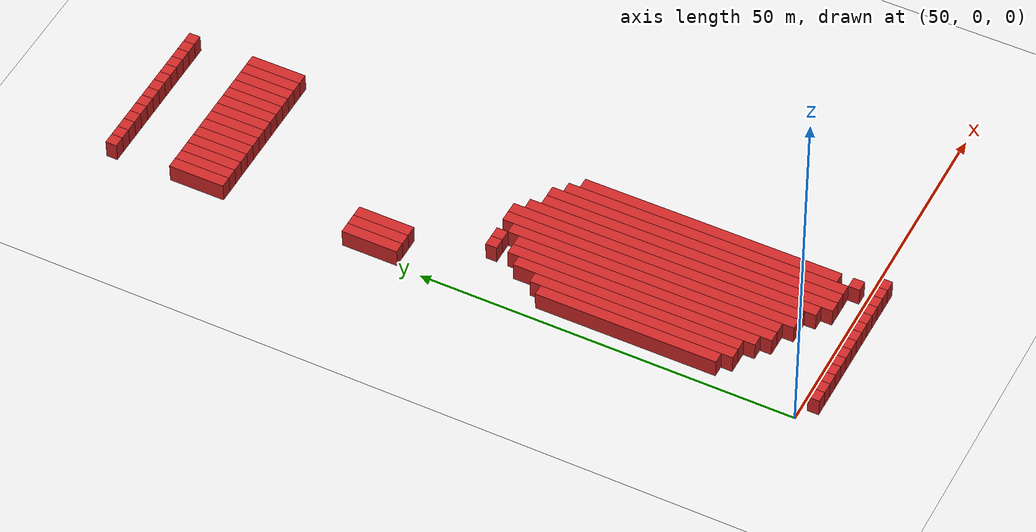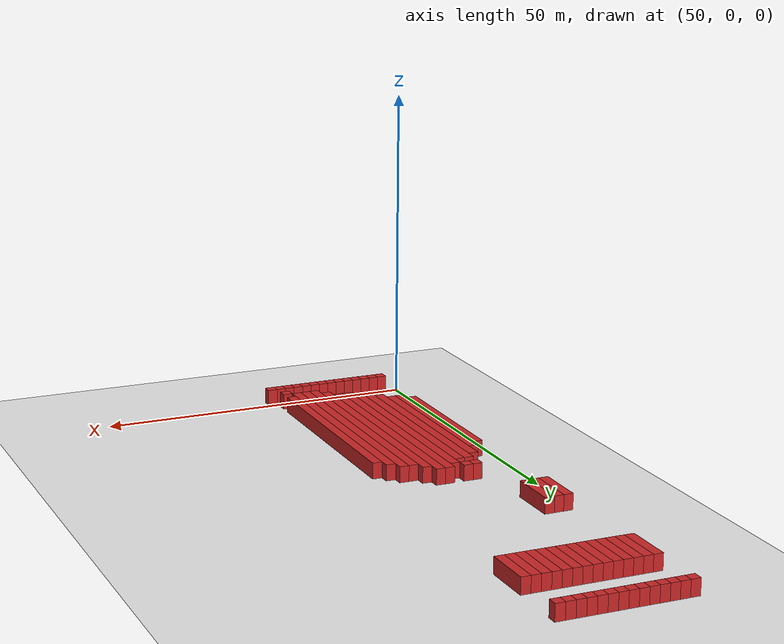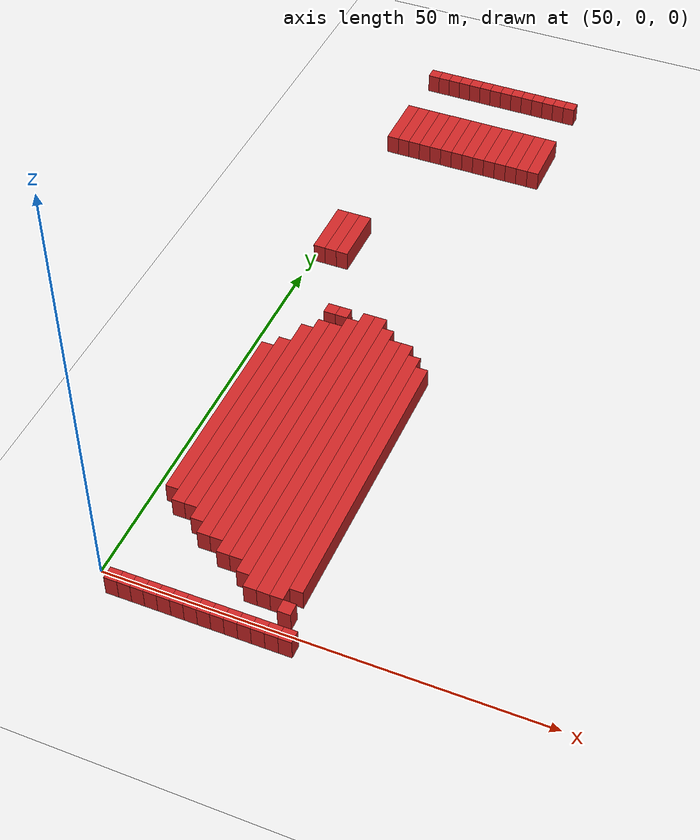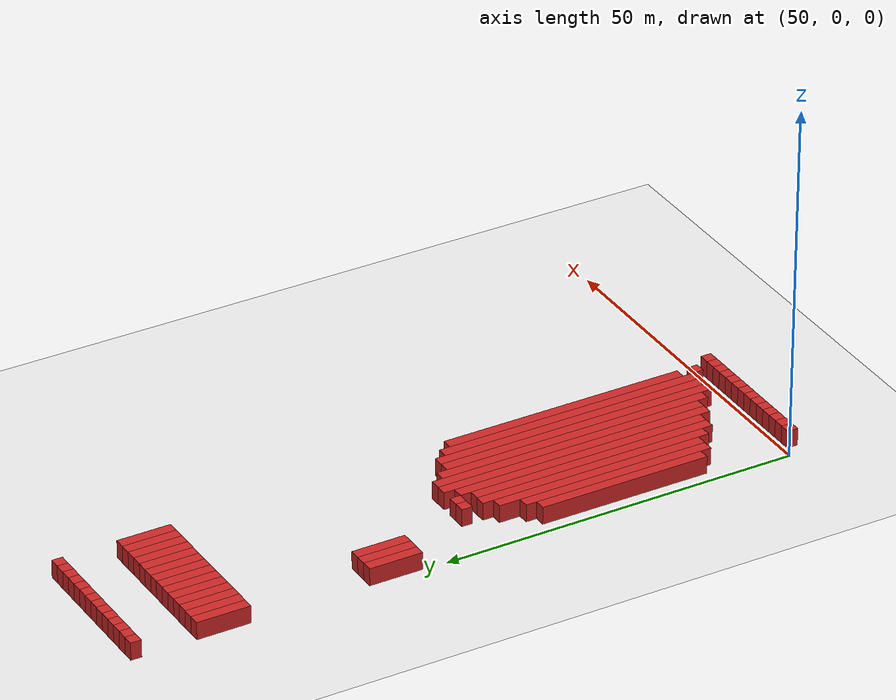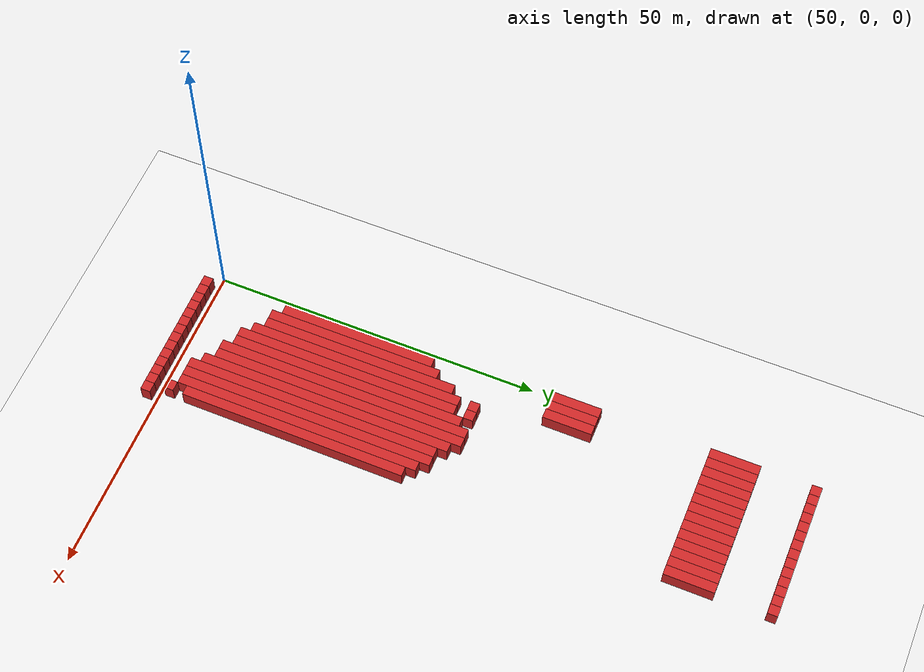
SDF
<sdf version="1.4">
 <world name="1_wall">
  <model name="ground_plane">
   <static>1</static>
   <link name="link">
    <collision name="collision">
     <geometry><plane><normal>0 0 1</normal><size>1000 1000</size></plane></geometry>
     <surface><friction><ode><mu>100</mu><mu2>50</mu2></ode></friction></surface>
    </collision>
    <visual name="visual">
     <cast_shadows>0</cast_shadows>
     <geometry><plane><normal>0 0 1</normal><size>10000 10000</size></plane></geometry>
     <material>
      <script><uri>file://media/materials/scripts/gazebo.material</uri><name>Gazebo/White</name></script>
     </material>
    </visual>
    <velocity_decay><linear>0</linear><angular>0</angular></velocity_decay>
   </link>
  </model>
  <model name="Wall_122">
   <static>1</static>
   <link name="Wall_122">
    <collision name="Wall_Collision_122">
     <geometry><box><size>7.5 1.5 2.5</size></box></geometry>
     <pose>0 0 1.25 0 -0 0</pose>
    </collision>
    <visual name="Wall_Visual_122">
     <pose>0 0 1.25 0 -0 0</pose>
     <geometry><box><size>7.5 1.5 2.5</size></box></geometry>
     <material>
      <script><uri>file://media/materials/scripts/gazebo.material</uri><name>Gazebo/Red</name></script>
     </material>
    </visual>
    <velocity_decay><linear>0</linear><angular>0</angular></velocity_decay>
    <pose>51.0 57.0 0 0 0 1.5707963267948966</pose>
   </link>
  </model>
  <model name="Wall_123">
   <static>1</static>
   <link name="Wall_123">
    <collision name="Wall_Collision_123">
     <geometry><box><size>7.5 1.5 2.5</size></box></geometry>
     <pose>0 0 1.25 0 -0 0</pose>
    </collision>
    <visual name="Wall_Visual_123">
     <pose>0 0 1.25 0 -0 0</pose>
     <geometry><box><size>7.5 1.5 2.5</size></box></geometry>
     <material>
      <script><uri>file://media/materials/scripts/gazebo.material</uri><name>Gazebo/Red</name></script>
     </material>
    </visual>
    <velocity_decay><linear>0</linear><angular>0</angular></velocity_decay>
    <pose>51.0 81.0 0 0 0 1.5707963267948966</pose>
   </link>
  </model>
  <model name="Wall_124">
   <static>1</static>
   <link name="Wall_124">
    <collision name="Wall_Collision_124">
     <geometry><box><size>1.5 1.5 2.5</size></box></geometry>
     <pose>0 0 1.25 0 -0 0</pose>
    </collision>
    <visual name="Wall_Visual_124">
     <pose>0 0 1.25 0 -0 0</pose>
     <geometry><box><size>1.5 1.5 2.5</size></box></geometry>
     <material>
      <script><uri>file://media/materials/scripts/gazebo.material</uri><name>Gazebo/Red</name></script>
     </material>
    </visual>
    <velocity_decay><linear>0</linear><angular>0</angular></velocity_decay>
    <pose>51.0 93.0 0 0 0 1.5707963267948966</pose>
   </link>
  </model>
  <model name="Wall_125">
   <static>1</static>
   <link name="Wall_125">
    <collision name="Wall_Collision_125">
     <geometry><box><size>1.5 1.5 2.5</size></box></geometry>
     <pose>0 0 1.25 0 -0 0</pose>
    </collision>
    <visual name="Wall_Visual_125">
     <pose>0 0 1.25 0 -0 0</pose>
     <geometry><box><size>1.5 1.5 2.5</size></box></geometry>
     <material>
      <script><uri>file://media/materials/scripts/gazebo.material</uri><name>Gazebo/Red</name></script>
     </material>
    </visual>
    <velocity_decay><linear>0</linear><angular>0</angular></velocity_decay>
    <pose>52.5 -1.5 0 0 0 1.5707963267948966</pose>
   </link>
  </model>
  <model name="Wall_126">
   <static>1</static>
   <link name="Wall_126">
    <collision name="Wall_Collision_126">
     <geometry><box><size>24.0 1.5 2.5</size></box></geometry>
     <pose>0 0 1.25 0 -0 0</pose>
    </collision>
    <visual name="Wall_Visual_126">
     <pose>0 0 1.25 0 -0 0</pose>
     <geometry><box><size>24.0 1.5 2.5</size></box></geometry>
     <material>
      <script><uri>file://media/materials/scripts/gazebo.material</uri><name>Gazebo/Red</name></script>
     </material>
    </visual>
    <velocity_decay><linear>0</linear><angular>0</angular></velocity_decay>
    <pose>52.5 23.25 0 0 0 1.5707963267948966</pose>
   </link>
  </model>
  <model name="Wall_127">
   <static>1</static>
   <link name="Wall_127">
    <collision name="Wall_Collision_127">
     <geometry><box><size>7.5 1.5 2.5</size></box></geometry>
     <pose>0 0 1.25 0 -0 0</pose>
    </collision>
    <visual name="Wall_Visual_127">
     <pose>0 0 1.25 0 -0 0</pose>
     <geometry><box><size>7.5 1.5 2.5</size></box></geometry>
     <material>
      <script><uri>file://media/materials/scripts/gazebo.material</uri><name>Gazebo/Red</name></script>
     </material>
    </visual>
    <velocity_decay><linear>0</linear><angular>0</angular></velocity_decay>
    <pose>52.5 57.0 0 0 0 1.5707963267948966</pose>
   </link>
  </model>
  <model name="Wall_128">
   <static>1</static>
   <link name="Wall_128">
    <collision name="Wall_Collision_128">
     <geometry><box><size>7.5 1.5 2.5</size></box></geometry>
     <pose>0 0 1.25 0 -0 0</pose>
    </collision>
    <visual name="Wall_Visual_128">
     <pose>0 0 1.25 0 -0 0</pose>
     <geometry><box><size>7.5 1.5 2.5</size></box></geometry>
     <material>
      <script><uri>file://media/materials/scripts/gazebo.material</uri><name>Gazebo/Red</name></script>
     </material>
    </visual>
    <velocity_decay><linear>0</linear><angular>0</angular></velocity_decay>
    <pose>52.5 81.0 0 0 0 1.5707963267948966</pose>
   </link>
  </model>
  <model name="Wall_129">
   <static>1</static>
   <link name="Wall_129">
    <collision name="Wall_Collision_129">
     <geometry><box><size>1.5 1.5 2.5</size></box></geometry>
     <pose>0 0 1.25 0 -0 0</pose>
    </collision>
    <visual name="Wall_Visual_129">
     <pose>0 0 1.25 0 -0 0</pose>
     <geometry><box><size>1.5 1.5 2.5</size></box></geometry>
     <material>
      <script><uri>file://media/materials/scripts/gazebo.material</uri><name>Gazebo/Red</name></script>
     </material>
    </visual>
    <velocity_decay><linear>0</linear><angular>0</angular></velocity_decay>
    <pose>52.5 93.0 0 0 0 1.5707963267948966</pose>
   </link>
  </model>
  <model name="Wall_130">
   <static>1</static>
   <link name="Wall_130">
    <collision name="Wall_Collision_130">
     <geometry><box><size>1.5 1.5 2.5</size></box></geometry>
     <pose>0 0 1.25 0 -0 0</pose>
    </collision>
    <visual name="Wall_Visual_130">
     <pose>0 0 1.25 0 -0 0</pose>
     <geometry><box><size>1.5 1.5 2.5</size></box></geometry>
     <material>
      <script><uri>file://media/materials/scripts/gazebo.material</uri><name>Gazebo/Red</name></script>
     </material>
    </visual>
    <velocity_decay><linear>0</linear><angular>0</angular></velocity_decay>
    <pose>54.0 -1.5 0 0 0 1.5707963267948966</pose>
   </link>
  </model>
  <model name="Wall_131">
   <static>1</static>
   <link name="Wall_131">
    <collision name="Wall_Collision_131">
     <geometry><box><size>27.0 1.5 2.5</size></box></geometry>
     <pose>0 0 1.25 0 -0 0</pose>
    </collision>
    <visual name="Wall_Visual_131">
     <pose>0 0 1.25 0 -0 0</pose>
     <geometry><box><size>27.0 1.5 2.5</size></box></geometry>
     <material>
      <script><uri>file://media/materials/scripts/gazebo.material</uri><name>Gazebo/Red</name></script>
     </material>
    </visual>
    <velocity_decay><linear>0</linear><angular>0</angular></velocity_decay>
    <pose>54.0 23.25 0 0 0 1.5707963267948966</pose>
   </link>
  </model>
  <model name="Wall_132">
   <static>1</static>
   <link name="Wall_132">
    <collision name="Wall_Collision_132">
     <geometry><box><size>7.5 1.5 2.5</size></box></geometry>
     <pose>0 0 1.25 0 -0 0</pose>
    </collision>
    <visual name="Wall_Visual_132">
     <pose>0 0 1.25 0 -0 0</pose>
     <geometry><box><size>7.5 1.5 2.5</size></box></geometry>
     <material>
      <script><uri>file://media/materials/scripts/gazebo.material</uri><name>Gazebo/Red</name></script>
     </material>
    </visual>
    <velocity_decay><linear>0</linear><angular>0</angular></velocity_decay>
    <pose>54.0 57.0 0 0 0 1.5707963267948966</pose>
   </link>
  </model>
  <model name="Wall_133">
   <static>1</static>
   <link name="Wall_133">
    <collision name="Wall_Collision_133">
     <geometry><box><size>7.5 1.5 2.5</size></box></geometry>
     <pose>0 0 1.25 0 -0 0</pose>
    </collision>
    <visual name="Wall_Visual_133">
     <pose>0 0 1.25 0 -0 0</pose>
     <geometry><box><size>7.5 1.5 2.5</size></box></geometry>
     <material>
      <script><uri>file://media/materials/scripts/gazebo.material</uri><name>Gazebo/Red</name></script>
     </material>
    </visual>
    <velocity_decay><linear>0</linear><angular>0</angular></velocity_decay>
    <pose>54.0 81.0 0 0 0 1.5707963267948966</pose>
   </link>
  </model>
  <model name="Wall_134">
   <static>1</static>
   <link name="Wall_134">
    <collision name="Wall_Collision_134">
     <geometry><box><size>1.5 1.5 2.5</size></box></geometry>
     <pose>0 0 1.25 0 -0 0</pose>
    </collision>
    <visual name="Wall_Visual_134">
     <pose>0 0 1.25 0 -0 0</pose>
     <geometry><box><size>1.5 1.5 2.5</size></box></geometry>
     <material>
      <script><uri>file://media/materials/scripts/gazebo.material</uri><name>Gazebo/Red</name></script>
     </material>
    </visual>
    <velocity_decay><linear>0</linear><angular>0</angular></velocity_decay>
    <pose>54.0 93.0 0 0 0 1.5707963267948966</pose>
   </link>
  </model>
  <model name="Wall_135">
   <static>1</static>
   <link name="Wall_135">
    <collision name="Wall_Collision_135">
     <geometry><box><size>1.5 1.5 2.5</size></box></geometry>
     <pose>0 0 1.25 0 -0 0</pose>
    </collision>
    <visual name="Wall_Visual_135">
     <pose>0 0 1.25 0 -0 0</pose>
     <geometry><box><size>1.5 1.5 2.5</size></box></geometry>
     <material>
      <script><uri>file://media/materials/scripts/gazebo.material</uri><name>Gazebo/Red</name></script>
     </material>
    </visual>
    <velocity_decay><linear>0</linear><angular>0</angular></velocity_decay>
    <pose>55.5 -1.5 0 0 0 1.5707963267948966</pose>
   </link>
  </model>
  <model name="Wall_136">
   <static>1</static>
   <link name="Wall_136">
    <collision name="Wall_Collision_136">
     <geometry><box><size>30.0 1.5 2.5</size></box></geometry>
     <pose>0 0 1.25 0 -0 0</pose>
    </collision>
    <visual name="Wall_Visual_136">
     <pose>0 0 1.25 0 -0 0</pose>
     <geometry><box><size>30.0 1.5 2.5</size></box></geometry>
     <material>
      <script><uri>file://media/materials/scripts/gazebo.material</uri><name>Gazebo/Red</name></script>
     </material>
    </visual>
    <velocity_decay><linear>0</linear><angular>0</angular></velocity_decay>
    <pose>55.5 24.75 0 0 0 1.5707963267948966</pose>
   </link>
  </model>
  <model name="Wall_137">
   <static>1</static>
   <link name="Wall_137">
    <collision name="Wall_Collision_137">
     <geometry><box><size>7.5 1.5 2.5</size></box></geometry>
     <pose>0 0 1.25 0 -0 0</pose>
    </collision>
    <visual name="Wall_Visual_137">
     <pose>0 0 1.25 0 -0 0</pose>
     <geometry><box><size>7.5 1.5 2.5</size></box></geometry>
     <material>
      <script><uri>file://media/materials/scripts/gazebo.material</uri><name>Gazebo/Red</name></script>
     </material>
    </visual>
    <velocity_decay><linear>0</linear><angular>0</angular></velocity_decay>
    <pose>55.5 81.0 0 0 0 1.5707963267948966</pose>
   </link>
  </model>
  <model name="Wall_138">
   <static>1</static>
   <link name="Wall_138">
    <collision name="Wall_Collision_138">
     <geometry><box><size>1.5 1.5 2.5</size></box></geometry>
     <pose>0 0 1.25 0 -0 0</pose>
    </collision>
    <visual name="Wall_Visual_138">
     <pose>0 0 1.25 0 -0 0</pose>
     <geometry><box><size>1.5 1.5 2.5</size></box></geometry>
     <material>
      <script><uri>file://media/materials/scripts/gazebo.material</uri><name>Gazebo/Red</name></script>
     </material>
    </visual>
    <velocity_decay><linear>0</linear><angular>0</angular></velocity_decay>
    <pose>55.5 93.0 0 0 0 1.5707963267948966</pose>
   </link>
  </model>
  <model name="Wall_139">
   <static>1</static>
   <link name="Wall_139">
    <collision name="Wall_Collision_139">
     <geometry><box><size>1.5 1.5 2.5</size></box></geometry>
     <pose>0 0 1.25 0 -0 0</pose>
    </collision>
    <visual name="Wall_Visual_139">
     <pose>0 0 1.25 0 -0 0</pose>
     <geometry><box><size>1.5 1.5 2.5</size></box></geometry>
     <material>
      <script><uri>file://media/materials/scripts/gazebo.material</uri><name>Gazebo/Red</name></script>
     </material>
    </visual>
    <velocity_decay><linear>0</linear><angular>0</angular></velocity_decay>
    <pose>57.0 -1.5 0 0 0 1.5707963267948966</pose>
   </link>
  </model>
  <model name="Wall_140">
   <static>1</static>
   <link name="Wall_140">
    <collision name="Wall_Collision_140">
     <geometry><box><size>33.0 1.5 2.5</size></box></geometry>
     <pose>0 0 1.25 0 -0 0</pose>
    </collision>
    <visual name="Wall_Visual_140">
     <pose>0 0 1.25 0 -0 0</pose>
     <geometry><box><size>33.0 1.5 2.5</size></box></geometry>
     <material>
      <script><uri>file://media/materials/scripts/gazebo.material</uri><name>Gazebo/Red</name></script>
     </material>
    </visual>
    <velocity_decay><linear>0</linear><angular>0</angular></velocity_decay>
    <pose>57.0 24.75 0 0 0 1.5707963267948966</pose>
   </link>
  </model>
  <model name="Wall_141">
   <static>1</static>
   <link name="Wall_141">
    <collision name="Wall_Collision_141">
     <geometry><box><size>1.5 1.5 2.5</size></box></geometry>
     <pose>0 0 1.25 0 -0 0</pose>
    </collision>
    <visual name="Wall_Visual_141">
     <pose>0 0 1.25 0 -0 0</pose>
     <geometry><box><size>1.5 1.5 2.5</size></box></geometry>
     <material>
      <script><uri>file://media/materials/scripts/gazebo.material</uri><name>Gazebo/Red</name></script>
     </material>
    </visual>
    <velocity_decay><linear>0</linear><angular>0</angular></velocity_decay>
    <pose>57.0 43.5 0 0 0 1.5707963267948966</pose>
   </link>
  </model>
  <model name="Wall_142">
   <static>1</static>
   <link name="Wall_142">
    <collision name="Wall_Collision_142">
     <geometry><box><size>7.5 1.5 2.5</size></box></geometry>
     <pose>0 0 1.25 0 -0 0</pose>
    </collision>
    <visual name="Wall_Visual_142">
     <pose>0 0 1.25 0 -0 0</pose>
     <geometry><box><size>7.5 1.5 2.5</size></box></geometry>
     <material>
      <script><uri>file://media/materials/scripts/gazebo.material</uri><name>Gazebo/Red</name></script>
     </material>
    </visual>
    <velocity_decay><linear>0</linear><angular>0</angular></velocity_decay>
    <pose>57.0 81.0 0 0 0 1.5707963267948966</pose>
   </link>
  </model>
  <model name="Wall_143">
   <static>1</static>
   <link name="Wall_143">
    <collision name="Wall_Collision_143">
     <geometry><box><size>1.5 1.5 2.5</size></box></geometry>
     <pose>0 0 1.25 0 -0 0</pose>
    </collision>
    <visual name="Wall_Visual_143">
     <pose>0 0 1.25 0 -0 0</pose>
     <geometry><box><size>1.5 1.5 2.5</size></box></geometry>
     <material>
      <script><uri>file://media/materials/scripts/gazebo.material</uri><name>Gazebo/Red</name></script>
     </material>
    </visual>
    <velocity_decay><linear>0</linear><angular>0</angular></velocity_decay>
    <pose>57.0 93.0 0 0 0 1.5707963267948966</pose>
   </link>
  </model>
  <model name="Wall_144">
   <static>1</static>
   <link name="Wall_144">
    <collision name="Wall_Collision_144">
     <geometry><box><size>1.5 1.5 2.5</size></box></geometry>
     <pose>0 0 1.25 0 -0 0</pose>
    </collision>
    <visual name="Wall_Visual_144">
     <pose>0 0 1.25 0 -0 0</pose>
     <geometry><box><size>1.5 1.5 2.5</size></box></geometry>
     <material>
      <script><uri>file://media/materials/scripts/gazebo.material</uri><name>Gazebo/Red</name></script>
     </material>
    </visual>
    <velocity_decay><linear>0</linear><angular>0</angular></velocity_decay>
    <pose>58.5 -1.5 0 0 0 1.5707963267948966</pose>
   </link>
  </model>
  <model name="Wall_145">
   <static>1</static>
   <link name="Wall_145">
    <collision name="Wall_Collision_145">
     <geometry><box><size>34.5 1.5 2.5</size></box></geometry>
     <pose>0 0 1.25 0 -0 0</pose>
    </collision>
    <visual name="Wall_Visual_145">
     <pose>0 0 1.25 0 -0 0</pose>
     <geometry><box><size>34.5 1.5 2.5</size></box></geometry>
     <material>
      <script><uri>file://media/materials/scripts/gazebo.material</uri><name>Gazebo/Red</name></script>
     </material>
    </visual>
    <velocity_decay><linear>0</linear><angular>0</angular></velocity_decay>
    <pose>58.5 24.0 0 0 0 1.5707963267948966</pose>
   </link>
  </model>
  <model name="Wall_146">
   <static>1</static>
   <link name="Wall_146">
    <collision name="Wall_Collision_146">
     <geometry><box><size>1.5 1.5 2.5</size></box></geometry>
     <pose>0 0 1.25 0 -0 0</pose>
    </collision>
    <visual name="Wall_Visual_146">
     <pose>0 0 1.25 0 -0 0</pose>
     <geometry><box><size>1.5 1.5 2.5</size></box></geometry>
     <material>
      <script><uri>file://media/materials/scripts/gazebo.material</uri><name>Gazebo/Red</name></script>
     </material>
    </visual>
    <velocity_decay><linear>0</linear><angular>0</angular></velocity_decay>
    <pose>58.5 43.5 0 0 0 1.5707963267948966</pose>
   </link>
  </model>
  <model name="Wall_147">
   <static>1</static>
   <link name="Wall_147">
    <collision name="Wall_Collision_147">
     <geometry><box><size>7.5 1.5 2.5</size></box></geometry>
     <pose>0 0 1.25 0 -0 0</pose>
    </collision>
    <visual name="Wall_Visual_147">
     <pose>0 0 1.25 0 -0 0</pose>
     <geometry><box><size>7.5 1.5 2.5</size></box></geometry>
     <material>
      <script><uri>file://media/materials/scripts/gazebo.material</uri><name>Gazebo/Red</name></script>
     </material>
    </visual>
    <velocity_decay><linear>0</linear><angular>0</angular></velocity_decay>
    <pose>58.5 81.0 0 0 0 1.5707963267948966</pose>
   </link>
  </model>
  <model name="Wall_148">
   <static>1</static>
   <link name="Wall_148">
    <collision name="Wall_Collision_148">
     <geometry><box><size>1.5 1.5 2.5</size></box></geometry>
     <pose>0 0 1.25 0 -0 0</pose>
    </collision>
    <visual name="Wall_Visual_148">
     <pose>0 0 1.25 0 -0 0</pose>
     <geometry><box><size>1.5 1.5 2.5</size></box></geometry>
     <material>
      <script><uri>file://media/materials/scripts/gazebo.material</uri><name>Gazebo/Red</name></script>
     </material>
    </visual>
    <velocity_decay><linear>0</linear><angular>0</angular></velocity_decay>
    <pose>58.5 93.0 0 0 0 1.5707963267948966</pose>
   </link>
  </model>
  <model name="Wall_149">
   <static>1</static>
   <link name="Wall_149">
    <collision name="Wall_Collision_149">
     <geometry><box><size>1.5 1.5 2.5</size></box></geometry>
     <pose>0 0 1.25 0 -0 0</pose>
    </collision>
    <visual name="Wall_Visual_149">
     <pose>0 0 1.25 0 -0 0</pose>
     <geometry><box><size>1.5 1.5 2.5</size></box></geometry>
     <material>
      <script><uri>file://media/materials/scripts/gazebo.material</uri><name>Gazebo/Red</name></script>
     </material>
    </visual>
    <velocity_decay><linear>0</linear><angular>0</angular></velocity_decay>
    <pose>60.0 -1.5 0 0 0 1.5707963267948966</pose>
   </link>
  </model>
  <model name="Wall_150">
   <static>1</static>
   <link name="Wall_150">
    <collision name="Wall_Collision_150">
     <geometry><box><size>36.0 1.5 2.5</size></box></geometry>
     <pose>0 0 1.25 0 -0 0</pose>
    </collision>
    <visual name="Wall_Visual_150">
     <pose>0 0 1.25 0 -0 0</pose>
     <geometry><box><size>36.0 1.5 2.5</size></box></geometry>
     <material>
      <script><uri>file://media/materials/scripts/gazebo.material</uri><name>Gazebo/Red</name></script>
     </material>
    </visual>
    <velocity_decay><linear>0</linear><angular>0</angular></velocity_decay>
    <pose>60.0 24.75 0 0 0 1.5707963267948966</pose>
   </link>
  </model>
  <model name="Wall_151">
   <static>1</static>
   <link name="Wall_151">
    <collision name="Wall_Collision_151">
     <geometry><box><size>7.5 1.5 2.5</size></box></geometry>
     <pose>0 0 1.25 0 -0 0</pose>
    </collision>
    <visual name="Wall_Visual_151">
     <pose>0 0 1.25 0 -0 0</pose>
     <geometry><box><size>7.5 1.5 2.5</size></box></geometry>
     <material>
      <script><uri>file://media/materials/scripts/gazebo.material</uri><name>Gazebo/Red</name></script>
     </material>
    </visual>
    <velocity_decay><linear>0</linear><angular>0</angular></velocity_decay>
    <pose>60.0 81.0 0 0 0 1.5707963267948966</pose>
   </link>
  </model>
  <model name="Wall_152">
   <static>1</static>
   <link name="Wall_152">
    <collision name="Wall_Collision_152">
     <geometry><box><size>1.5 1.5 2.5</size></box></geometry>
     <pose>0 0 1.25 0 -0 0</pose>
    </collision>
    <visual name="Wall_Visual_152">
     <pose>0 0 1.25 0 -0 0</pose>
     <geometry><box><size>1.5 1.5 2.5</size></box></geometry>
     <material>
      <script><uri>file://media/materials/scripts/gazebo.material</uri><name>Gazebo/Red</name></script>
     </material>
    </visual>
    <velocity_decay><linear>0</linear><angular>0</angular></velocity_decay>
    <pose>60.0 93.0 0 0 0 1.5707963267948966</pose>
   </link>
  </model>
  <model name="Wall_153">
   <static>1</static>
   <link name="Wall_153">
    <collision name="Wall_Collision_153">
     <geometry><box><size>1.5 1.5 2.5</size></box></geometry>
     <pose>0 0 1.25 0 -0 0</pose>
    </collision>
    <visual name="Wall_Visual_153">
     <pose>0 0 1.25 0 -0 0</pose>
     <geometry><box><size>1.5 1.5 2.5</size></box></geometry>
     <material>
      <script><uri>file://media/materials/scripts/gazebo.material</uri><name>Gazebo/Red</name></script>
     </material>
    </visual>
    <velocity_decay><linear>0</linear><angular>0</angular></velocity_decay>
    <pose>61.5 -1.5 0 0 0 1.5707963267948966</pose>
   </link>
  </model>
  <model name="Wall_154">
   <static>1</static>
   <link name="Wall_154">
    <collision name="Wall_Collision_154">
     <geometry><box><size>39.0 1.5 2.5</size></box></geometry>
     <pose>0 0 1.25 0 -0 0</pose>
    </collision>
    <visual name="Wall_Visual_154">
     <pose>0 0 1.25 0 -0 0</pose>
     <geometry><box><size>39.0 1.5 2.5</size></box></geometry>
     <material>
      <script><uri>file://media/materials/scripts/gazebo.material</uri><name>Gazebo/Red</name></script>
     </material>
    </visual>
    <velocity_decay><linear>0</linear><angular>0</angular></velocity_decay>
    <pose>61.5 24.75 0 0 0 1.5707963267948966</pose>
   </link>
  </model>
  <model name="Wall_155">
   <static>1</static>
   <link name="Wall_155">
    <collision name="Wall_Collision_155">
     <geometry><box><size>7.5 1.5 2.5</size></box></geometry>
     <pose>0 0 1.25 0 -0 0</pose>
    </collision>
    <visual name="Wall_Visual_155">
     <pose>0 0 1.25 0 -0 0</pose>
     <geometry><box><size>7.5 1.5 2.5</size></box></geometry>
     <material>
      <script><uri>file://media/materials/scripts/gazebo.material</uri><name>Gazebo/Red</name></script>
     </material>
    </visual>
    <velocity_decay><linear>0</linear><angular>0</angular></velocity_decay>
    <pose>61.5 81.0 0 0 0 1.5707963267948966</pose>
   </link>
  </model>
  <model name="Wall_156">
   <static>1</static>
   <link name="Wall_156">
    <collision name="Wall_Collision_156">
     <geometry><box><size>1.5 1.5 2.5</size></box></geometry>
     <pose>0 0 1.25 0 -0 0</pose>
    </collision>
    <visual name="Wall_Visual_156">
     <pose>0 0 1.25 0 -0 0</pose>
     <geometry><box><size>1.5 1.5 2.5</size></box></geometry>
     <material>
      <script><uri>file://media/materials/scripts/gazebo.material</uri><name>Gazebo/Red</name></script>
     </material>
    </visual>
    <velocity_decay><linear>0</linear><angular>0</angular></velocity_decay>
    <pose>61.5 93.0 0 0 0 1.5707963267948966</pose>
   </link>
  </model>
  <model name="Wall_157">
   <static>1</static>
   <link name="Wall_157">
    <collision name="Wall_Collision_157">
     <geometry><box><size>1.5 1.5 2.5</size></box></geometry>
     <pose>0 0 1.25 0 -0 0</pose>
    </collision>
    <visual name="Wall_Visual_157">
     <pose>0 0 1.25 0 -0 0</pose>
     <geometry><box><size>1.5 1.5 2.5</size></box></geometry>
     <material>
      <script><uri>file://media/materials/scripts/gazebo.material</uri><name>Gazebo/Red</name></script>
     </material>
    </visual>
    <velocity_decay><linear>0</linear><angular>0</angular></velocity_decay>
    <pose>63.0 -1.5 0 0 0 1.5707963267948966</pose>
   </link>
  </model>
  <model name="Wall_158">
   <static>1</static>
   <link name="Wall_158">
    <collision name="Wall_Collision_158">
     <geometry><box><size>39.0 1.5 2.5</size></box></geometry>
     <pose>0 0 1.25 0 -0 0</pose>
    </collision>
    <visual name="Wall_Visual_158">
     <pose>0 0 1.25 0 -0 0</pose>
     <geometry><box><size>39.0 1.5 2.5</size></box></geometry>
     <material>
      <script><uri>file://media/materials/scripts/gazebo.material</uri><name>Gazebo/Red</name></script>
     </material>
    </visual>
    <velocity_decay><linear>0</linear><angular>0</angular></velocity_decay>
    <pose>63.0 24.75 0 0 0 1.5707963267948966</pose>
   </link>
  </model>
  <model name="Wall_159">
   <static>1</static>
   <link name="Wall_159">
    <collision name="Wall_Collision_159">
     <geometry><box><size>7.5 1.5 2.5</size></box></geometry>
     <pose>0 0 1.25 0 -0 0</pose>
    </collision>
    <visual name="Wall_Visual_159">
     <pose>0 0 1.25 0 -0 0</pose>
     <geometry><box><size>7.5 1.5 2.5</size></box></geometry>
     <material>
      <script><uri>file://media/materials/scripts/gazebo.material</uri><name>Gazebo/Red</name></script>
     </material>
    </visual>
    <velocity_decay><linear>0</linear><angular>0</angular></velocity_decay>
    <pose>63.0 81.0 0 0 0 1.5707963267948966</pose>
   </link>
  </model>
  <model name="Wall_160">
   <static>1</static>
   <link name="Wall_160">
    <collision name="Wall_Collision_160">
     <geometry><box><size>1.5 1.5 2.5</size></box></geometry>
     <pose>0 0 1.25 0 -0 0</pose>
    </collision>
    <visual name="Wall_Visual_160">
     <pose>0 0 1.25 0 -0 0</pose>
     <geometry><box><size>1.5 1.5 2.5</size></box></geometry>
     <material>
      <script><uri>file://media/materials/scripts/gazebo.material</uri><name>Gazebo/Red</name></script>
     </material>
    </visual>
    <velocity_decay><linear>0</linear><angular>0</angular></velocity_decay>
    <pose>63.0 93.0 0 0 0 1.5707963267948966</pose>
   </link>
  </model>
  <model name="Wall_161">
   <static>1</static>
   <link name="Wall_161">
    <collision name="Wall_Collision_161">
     <geometry><box><size>1.5 1.5 2.5</size></box></geometry>
     <pose>0 0 1.25 0 -0 0</pose>
    </collision>
    <visual name="Wall_Visual_161">
     <pose>0 0 1.25 0 -0 0</pose>
     <geometry><box><size>1.5 1.5 2.5</size></box></geometry>
     <material>
      <script><uri>file://media/materials/scripts/gazebo.material</uri><name>Gazebo/Red</name></script>
     </material>
    </visual>
    <velocity_decay><linear>0</linear><angular>0</angular></velocity_decay>
    <pose>64.5 -1.5 0 0 0 1.5707963267948966</pose>
   </link>
  </model>
  <model name="Wall_162">
   <static>1</static>
   <link name="Wall_162">
    <collision name="Wall_Collision_162">
     <geometry><box><size>39.0 1.5 2.5</size></box></geometry>
     <pose>0 0 1.25 0 -0 0</pose>
    </collision>
    <visual name="Wall_Visual_162">
     <pose>0 0 1.25 0 -0 0</pose>
     <geometry><box><size>39.0 1.5 2.5</size></box></geometry>
     <material>
      <script><uri>file://media/materials/scripts/gazebo.material</uri><name>Gazebo/Red</name></script>
     </material>
    </visual>
    <velocity_decay><linear>0</linear><angular>0</angular></velocity_decay>
    <pose>64.5 23.25 0 0 0 1.5707963267948966</pose>
   </link>
  </model>
  <model name="Wall_163">
   <static>1</static>
   <link name="Wall_163">
    <collision name="Wall_Collision_163">
     <geometry><box><size>7.5 1.5 2.5</size></box></geometry>
     <pose>0 0 1.25 0 -0 0</pose>
    </collision>
    <visual name="Wall_Visual_163">
     <pose>0 0 1.25 0 -0 0</pose>
     <geometry><box><size>7.5 1.5 2.5</size></box></geometry>
     <material>
      <script><uri>file://media/materials/scripts/gazebo.material</uri><name>Gazebo/Red</name></script>
     </material>
    </visual>
    <velocity_decay><linear>0</linear><angular>0</angular></velocity_decay>
    <pose>64.5 81.0 0 0 0 1.5707963267948966</pose>
   </link>
  </model>
  <model name="Wall_164">
   <static>1</static>
   <link name="Wall_164">
    <collision name="Wall_Collision_164">
     <geometry><box><size>1.5 1.5 2.5</size></box></geometry>
     <pose>0 0 1.25 0 -0 0</pose>
    </collision>
    <visual name="Wall_Visual_164">
     <pose>0 0 1.25 0 -0 0</pose>
     <geometry><box><size>1.5 1.5 2.5</size></box></geometry>
     <material>
      <script><uri>file://media/materials/scripts/gazebo.material</uri><name>Gazebo/Red</name></script>
     </material>
    </visual>
    <velocity_decay><linear>0</linear><angular>0</angular></velocity_decay>
    <pose>64.5 93.0 0 0 0 1.5707963267948966</pose>
   </link>
  </model>
  <model name="Wall_165">
   <static>1</static>
   <link name="Wall_165">
    <collision name="Wall_Collision_165">
     <geometry><box><size>1.5 1.5 2.5</size></box></geometry>
     <pose>0 0 1.25 0 -0 0</pose>
    </collision>
    <visual name="Wall_Visual_165">
     <pose>0 0 1.25 0 -0 0</pose>
     <geometry><box><size>1.5 1.5 2.5</size></box></geometry>
     <material>
      <script><uri>file://media/materials/scripts/gazebo.material</uri><name>Gazebo/Red</name></script>
     </material>
    </visual>
    <velocity_decay><linear>0</linear><angular>0</angular></velocity_decay>
    <pose>66.0 -1.5 0 0 0 1.5707963267948966</pose>
   </link>
  </model>
  <model name="Wall_166">
   <static>1</static>
   <link name="Wall_166">
    <collision name="Wall_Collision_166">
     <geometry><box><size>39.0 1.5 2.5</size></box></geometry>
     <pose>0 0 1.25 0 -0 0</pose>
    </collision>
    <visual name="Wall_Visual_166">
     <pose>0 0 1.25 0 -0 0</pose>
     <geometry><box><size>39.0 1.5 2.5</size></box></geometry>
     <material>
      <script><uri>file://media/materials/scripts/gazebo.material</uri><name>Gazebo/Red</name></script>
     </material>
    </visual>
    <velocity_decay><linear>0</linear><angular>0</angular></velocity_decay>
    <pose>66.0 21.75 0 0 0 1.5707963267948966</pose>
   </link>
  </model>
  <model name="Wall_167">
   <static>1</static>
   <link name="Wall_167">
    <collision name="Wall_Collision_167">
     <geometry><box><size>7.5 1.5 2.5</size></box></geometry>
     <pose>0 0 1.25 0 -0 0</pose>
    </collision>
    <visual name="Wall_Visual_167">
     <pose>0 0 1.25 0 -0 0</pose>
     <geometry><box><size>7.5 1.5 2.5</size></box></geometry>
     <material>
      <script><uri>file://media/materials/scripts/gazebo.material</uri><name>Gazebo/Red</name></script>
     </material>
    </visual>
    <velocity_decay><linear>0</linear><angular>0</angular></velocity_decay>
    <pose>66.0 81.0 0 0 0 1.5707963267948966</pose>
   </link>
  </model>
  <model name="Wall_168">
   <static>1</static>
   <link name="Wall_168">
    <collision name="Wall_Collision_168">
     <geometry><box><size>1.5 1.5 2.5</size></box></geometry>
     <pose>0 0 1.25 0 -0 0</pose>
    </collision>
    <visual name="Wall_Visual_168">
     <pose>0 0 1.25 0 -0 0</pose>
     <geometry><box><size>1.5 1.5 2.5</size></box></geometry>
     <material>
      <script><uri>file://media/materials/scripts/gazebo.material</uri><name>Gazebo/Red</name></script>
     </material>
    </visual>
    <velocity_decay><linear>0</linear><angular>0</angular></velocity_decay>
    <pose>66.0 93.0 0 0 0 1.5707963267948966</pose>
   </link>
  </model>
  <model name="Wall_169">
   <static>1</static>
   <link name="Wall_169">
    <collision name="Wall_Collision_169">
     <geometry><box><size>1.5 1.5 2.5</size></box></geometry>
     <pose>0 0 1.25 0 -0 0</pose>
    </collision>
    <visual name="Wall_Visual_169">
     <pose>0 0 1.25 0 -0 0</pose>
     <geometry><box><size>1.5 1.5 2.5</size></box></geometry>
     <material>
      <script><uri>file://media/materials/scripts/gazebo.material</uri><name>Gazebo/Red</name></script>
     </material>
    </visual>
    <velocity_decay><linear>0</linear><angular>0</angular></velocity_decay>
    <pose>67.5 -1.5 0 0 0 1.5707963267948966</pose>
   </link>
  </model>
  <model name="Wall_170">
   <static>1</static>
   <link name="Wall_170">
    <collision name="Wall_Collision_170">
     <geometry><box><size>39.0 1.5 2.5</size></box></geometry>
     <pose>0 0 1.25 0 -0 0</pose>
    </collision>
    <visual name="Wall_Visual_170">
     <pose>0 0 1.25 0 -0 0</pose>
     <geometry><box><size>39.0 1.5 2.5</size></box></geometry>
     <material>
      <script><uri>file://media/materials/scripts/gazebo.material</uri><name>Gazebo/Red</name></script>
     </material>
    </visual>
    <velocity_decay><linear>0</linear><angular>0</angular></velocity_decay>
    <pose>67.5 21.75 0 0 0 1.5707963267948966</pose>
   </link>
  </model>
  <model name="Wall_171">
   <static>1</static>
   <link name="Wall_171">
    <collision name="Wall_Collision_171">
     <geometry><box><size>7.5 1.5 2.5</size></box></geometry>
     <pose>0 0 1.25 0 -0 0</pose>
    </collision>
    <visual name="Wall_Visual_171">
     <pose>0 0 1.25 0 -0 0</pose>
     <geometry><box><size>7.5 1.5 2.5</size></box></geometry>
     <material>
      <script><uri>file://media/materials/scripts/gazebo.material</uri><name>Gazebo/Red</name></script>
     </material>
    </visual>
    <velocity_decay><linear>0</linear><angular>0</angular></velocity_decay>
    <pose>67.5 81.0 0 0 0 1.5707963267948966</pose>
   </link>
  </model>
  <model name="Wall_172">
   <static>1</static>
   <link name="Wall_172">
    <collision name="Wall_Collision_172">
     <geometry><box><size>1.5 1.5 2.5</size></box></geometry>
     <pose>0 0 1.25 0 -0 0</pose>
    </collision>
    <visual name="Wall_Visual_172">
     <pose>0 0 1.25 0 -0 0</pose>
     <geometry><box><size>1.5 1.5 2.5</size></box></geometry>
     <material>
      <script><uri>file://media/materials/scripts/gazebo.material</uri><name>Gazebo/Red</name></script>
     </material>
    </visual>
    <velocity_decay><linear>0</linear><angular>0</angular></velocity_decay>
    <pose>67.5 93.0 0 0 0 1.5707963267948966</pose>
   </link>
  </model>
  <model name="Wall_173">
   <static>1</static>
   <link name="Wall_173">
    <collision name="Wall_Collision_173">
     <geometry><box><size>1.5 1.5 2.5</size></box></geometry>
     <pose>0 0 1.25 0 -0 0</pose>
    </collision>
    <visual name="Wall_Visual_173">
     <pose>0 0 1.25 0 -0 0</pose>
     <geometry><box><size>1.5 1.5 2.5</size></box></geometry>
     <material>
      <script><uri>file://media/materials/scripts/gazebo.material</uri><name>Gazebo/Red</name></script>
     </material>
    </visual>
    <velocity_decay><linear>0</linear><angular>0</angular></velocity_decay>
    <pose>69.0 -1.5 0 0 0 1.5707963267948966</pose>
   </link>
  </model>
  <model name="Wall_174">
   <static>1</static>
   <link name="Wall_174">
    <collision name="Wall_Collision_174">
     <geometry><box><size>37.5 1.5 2.5</size></box></geometry>
     <pose>0 0 1.25 0 -0 0</pose>
    </collision>
    <visual name="Wall_Visual_174">
     <pose>0 0 1.25 0 -0 0</pose>
     <geometry><box><size>37.5 1.5 2.5</size></box></geometry>
     <material>
      <script><uri>file://media/materials/scripts/gazebo.material</uri><name>Gazebo/Red</name></script>
     </material>
    </visual>
    <velocity_decay><linear>0</linear><angular>0</angular></velocity_decay>
    <pose>69.0 21.0 0 0 0 1.5707963267948966</pose>
   </link>
  </model>
  <model name="Wall_175">
   <static>1</static>
   <link name="Wall_175">
    <collision name="Wall_Collision_175">
     <geometry><box><size>7.5 1.5 2.5</size></box></geometry>
     <pose>0 0 1.25 0 -0 0</pose>
    </collision>
    <visual name="Wall_Visual_175">
     <pose>0 0 1.25 0 -0 0</pose>
     <geometry><box><size>7.5 1.5 2.5</size></box></geometry>
     <material>
      <script><uri>file://media/materials/scripts/gazebo.material</uri><name>Gazebo/Red</name></script>
     </material>
    </visual>
    <velocity_decay><linear>0</linear><angular>0</angular></velocity_decay>
    <pose>69.0 81.0 0 0 0 1.5707963267948966</pose>
   </link>
  </model>
  <model name="Wall_176">
   <static>1</static>
   <link name="Wall_176">
    <collision name="Wall_Collision_176">
     <geometry><box><size>1.5 1.5 2.5</size></box></geometry>
     <pose>0 0 1.25 0 -0 0</pose>
    </collision>
    <visual name="Wall_Visual_176">
     <pose>0 0 1.25 0 -0 0</pose>
     <geometry><box><size>1.5 1.5 2.5</size></box></geometry>
     <material>
      <script><uri>file://media/materials/scripts/gazebo.material</uri><name>Gazebo/Red</name></script>
     </material>
    </visual>
    <velocity_decay><linear>0</linear><angular>0</angular></velocity_decay>
    <pose>69.0 93.0 0 0 0 1.5707963267948966</pose>
   </link>
  </model>
  <model name="Wall_177">
   <static>1</static>
   <link name="Wall_177">
    <collision name="Wall_Collision_177">
     <geometry><box><size>1.5 1.5 2.5</size></box></geometry>
     <pose>0 0 1.25 0 -0 0</pose>
    </collision>
    <visual name="Wall_Visual_177">
     <pose>0 0 1.25 0 -0 0</pose>
     <geometry><box><size>1.5 1.5 2.5</size></box></geometry>
     <material>
      <script><uri>file://media/materials/scripts/gazebo.material</uri><name>Gazebo/Red</name></script>
     </material>
    </visual>
    <velocity_decay><linear>0</linear><angular>0</angular></velocity_decay>
    <pose>70.5 -1.5 0 0 0 1.5707963267948966</pose>
   </link>
  </model>
  <model name="Wall_178">
   <static>1</static>
   <link name="Wall_178">
    <collision name="Wall_Collision_178">
     <geometry><box><size>1.5 1.5 2.5</size></box></geometry>
     <pose>0 0 1.25 0 -0 0</pose>
    </collision>
    <visual name="Wall_Visual_178">
     <pose>0 0 1.25 0 -0 0</pose>
     <geometry><box><size>1.5 1.5 2.5</size></box></geometry>
     <material>
      <script><uri>file://media/materials/scripts/gazebo.material</uri><name>Gazebo/Red</name></script>
     </material>
    </visual>
    <velocity_decay><linear>0</linear><angular>0</angular></velocity_decay>
    <pose>70.5 1.5 0 0 0 1.5707963267948966</pose>
   </link>
  </model>
  <model name="Wall_179">
   <static>1</static>
   <link name="Wall_179">
    <collision name="Wall_Collision_179">
     <geometry><box><size>34.5 1.5 2.5</size></box></geometry>
     <pose>0 0 1.25 0 -0 0</pose>
    </collision>
    <visual name="Wall_Visual_179">
     <pose>0 0 1.25 0 -0 0</pose>
     <geometry><box><size>34.5 1.5 2.5</size></box></geometry>
     <material>
      <script><uri>file://media/materials/scripts/gazebo.material</uri><name>Gazebo/Red</name></script>
     </material>
    </visual>
    <velocity_decay><linear>0</linear><angular>0</angular></velocity_decay>
    <pose>70.5 21.0 0 0 0 1.5707963267948966</pose>
   </link>
  </model>
  <model name="Wall_180">
   <static>1</static>
   <link name="Wall_180">
    <collision name="Wall_Collision_180">
     <geometry><box><size>7.5 1.5 2.5</size></box></geometry>
     <pose>0 0 1.25 0 -0 0</pose>
    </collision>
    <visual name="Wall_Visual_180">
     <pose>0 0 1.25 0 -0 0</pose>
     <geometry><box><size>7.5 1.5 2.5</size></box></geometry>
     <material>
      <script><uri>file://media/materials/scripts/gazebo.material</uri><name>Gazebo/Red</name></script>
     </material>
    </visual>
    <velocity_decay><linear>0</linear><angular>0</angular></velocity_decay>
    <pose>70.5 81.0 0 0 0 1.5707963267948966</pose>
   </link>
  </model>
  <model name="Wall_181">
   <static>1</static>
   <link name="Wall_181">
    <collision name="Wall_Collision_181">
     <geometry><box><size>1.5 1.5 2.5</size></box></geometry>
     <pose>0 0 1.25 0 -0 0</pose>
    </collision>
    <visual name="Wall_Visual_181">
     <pose>0 0 1.25 0 -0 0</pose>
     <geometry><box><size>1.5 1.5 2.5</size></box></geometry>
     <material>
      <script><uri>file://media/materials/scripts/gazebo.material</uri><name>Gazebo/Red</name></script>
     </material>
    </visual>
    <velocity_decay><linear>0</linear><angular>0</angular></velocity_decay>
    <pose>70.5 93.0 0 0 0 1.5707963267948966</pose>
   </link>
  </model>
  <model name="Wall_182">
   <static>1</static>
   <link name="Wall_182">
    <collision name="Wall_Collision_182">
     <geometry><box><size>1.5 1.5 2.5</size></box></geometry>
     <pose>0 0 1.25 0 -0 0</pose>
    </collision>
    <visual name="Wall_Visual_182">
     <pose>0 0 1.25 0 -0 0</pose>
     <geometry><box><size>1.5 1.5 2.5</size></box></geometry>
     <material>
      <script><uri>file://media/materials/scripts/gazebo.material</uri><name>Gazebo/Red</name></script>
     </material>
    </visual>
    <velocity_decay><linear>0</linear><angular>0</angular></velocity_decay>
    <pose>72.0 -1.5 0 0 0 1.5707963267948966</pose>
   </link>
  </model>
 </world>
</sdf>
